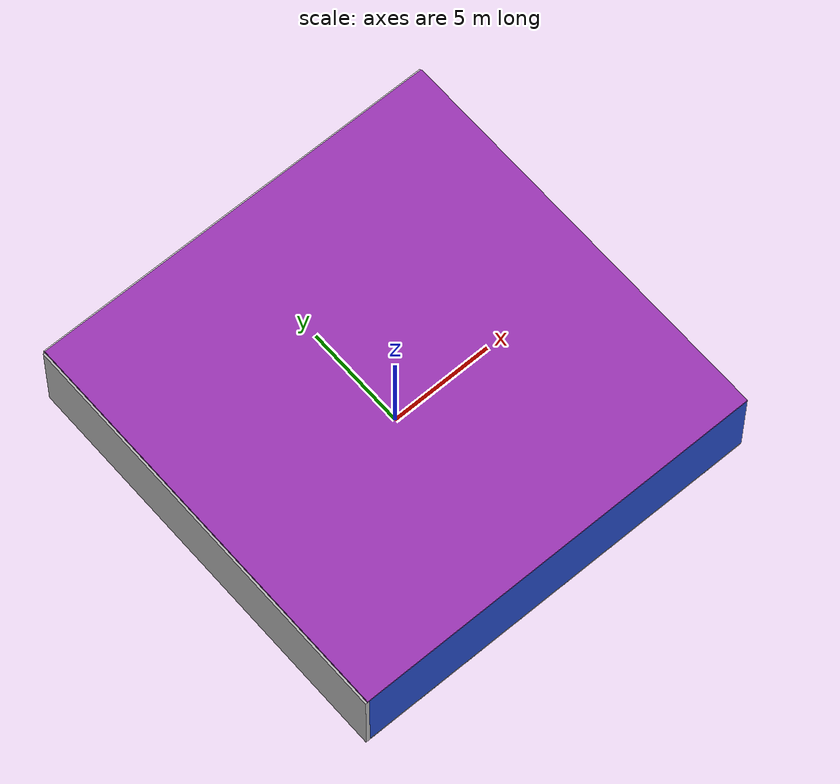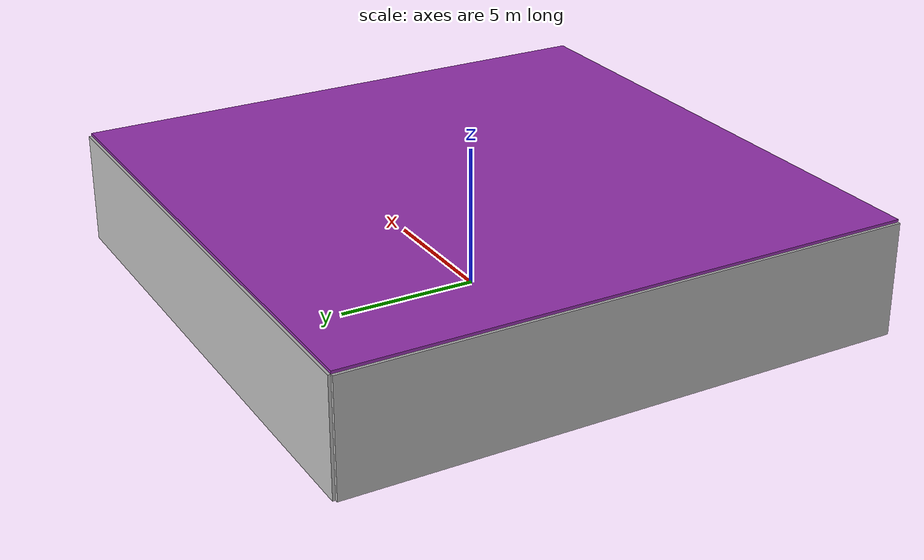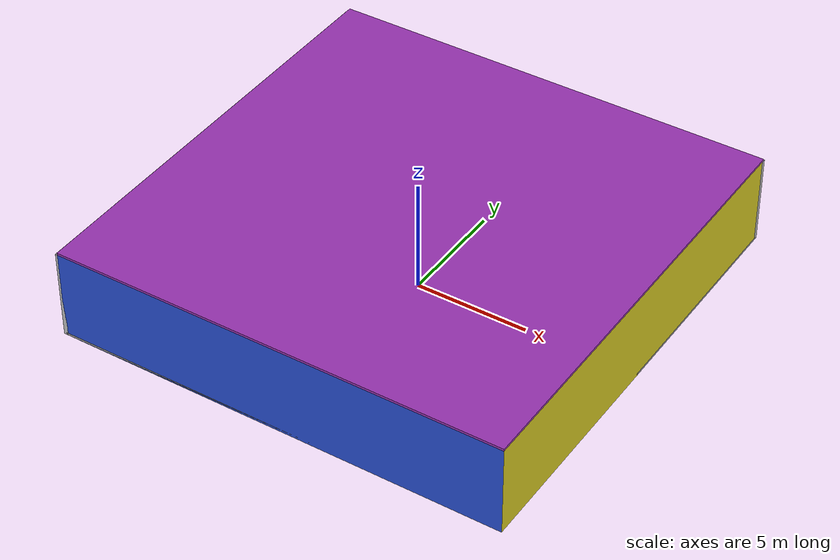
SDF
<sdf version="1.4">
 <world name="default">
  <physics type="ode">
   <max_step_size>0.001</max_step_size>
   <real_time_factor>1</real_time_factor>
   <real_time_update_rate>1000</real_time_update_rate>
   <gravity>0 0 -9.8</gravity>
  </physics>
  <scene><ambient>0.4 0.4 0.4 1</ambient><background>0.7 0.7 0.7 1</background><shadows>1</shadows></scene>
  <model name="Surrounding">
   <static>1</static>
   <link name="Ceiling">
    <collision name="Ceiling_Collision"><geometry><box><size>20 20 0.1</size></box></geometry></collision>
    <visual name="Ceiling_Visual">
     <geometry><box><size>20 20 0.1</size></box></geometry>
     <material>
      <script><uri>file://media/materials/scripts/gazebo.material</uri><name>Gazebo/Purple</name></script>
     </material>
    </visual>
    <pose>0 0 4.05 0 0 0</pose>
   </link>
   <link name="Wall_South">
    <collision name="Wall_South_Collision">
     <geometry><box><size>20 0 4</size></box></geometry>
     <pose>0 0 2 0 -0 0</pose>
    </collision>
    <visual name="Wall_South_Visual">
     <pose>0 0 2 0 -0 0</pose>
     <geometry><box><size>20 0 4</size></box></geometry>
     <material>
      <script><uri>file://media/materials/scripts/gazebo.material</uri><name>Gazebo/BlueGlow</name></script>
     </material>
    </visual>
    <velocity_decay><linear>0</linear><angular>0</angular></velocity_decay>
    <pose>0 -10 0 0 -0 0</pose>
   </link>
   <link name="Wall_East">
    <collision name="Wall_21_Collision">
     <geometry><box><size>20 0 4</size></box></geometry>
     <pose>0 0 2 0 -0 0</pose>
    </collision>
    <visual name="Wall_21_Visual">
     <pose>0 0 2 0 -0 0</pose>
     <geometry><box><size>20 0 4</size></box></geometry>
     <material>
      <script><uri>file://media/materials/scripts/gazebo.material</uri><name>Gazebo/Yellow</name></script>
     </material>
    </visual>
    <velocity_decay><linear>0</linear><angular>0</angular></velocity_decay>
    <pose>10 0 0 0 -0 1.5708</pose>
   </link>
   <link name="Wall_North">
    <collision name="Wall_22_Collision">
     <geometry><box><size>20 0.2 4</size></box></geometry>
     <pose>0 0 2 0 -0 0</pose>
    </collision>
    <visual name="Wall_22_Visual">
     <pose>0 0 2 0 -0 0</pose>
     <geometry><box><size>20 0.2 4</size></box></geometry>
     <material>
      <script><uri>file://media/materials/scripts/gazebo.material</uri><name>Gazebo/LightOff</name></script>
     </material>
    </visual>
    <velocity_decay><linear>0</linear><angular>0</angular></velocity_decay>
    <pose>0 10 0 0 -0 0</pose>
   </link>
   <link name="Wall_West">
    <collision name="Wall_23_Collision">
     <geometry><box><size>20 0.2 4</size></box></geometry>
     <pose>0 0 2 0 -0 0</pose>
    </collision>
    <visual name="Wall_23_Visual">
     <pose>0 0 2 0 -0 0</pose>
     <geometry><box><size>20 0.2 4</size></box></geometry>
     <material>
      <script><uri>file://media/materials/scripts/gazebo.material</uri><name>Gazebo/Pioneer2Body</name></script>
     </material>
    </visual>
    <velocity_decay><linear>0</linear><angular>0</angular></velocity_decay>
    <pose>-10 0 0 0 0 -1.5708</pose>
   </link>
   <link name="Ground_link">
    <collision name="collision">
     <pose>0 0 .05 0 -0 0</pose>
     <geometry><box><size>20 20 0.1</size></box></geometry>
    </collision>
    <visual name="visual">
     <pose>0 0 .05 0 -0 0</pose>
     <geometry><box><size>20 20 0.1</size></box></geometry>
     <material>
      <script><uri>file://media/materials/scripts/gazebo.material</uri><name>Gazebo/Grey</name></script>
     </material>
    </visual>
   </link>
   <static>1</static>
  </model>
  <spherical_coordinates>
   <surface_model>EARTH_WGS84</surface_model>
   <latitude_deg>0</latitude_deg>
   <longitude_deg>0</longitude_deg>
   <elevation>0</elevation>
   <heading_deg>0</heading_deg>
  </spherical_coordinates>
  <light name="lightball_0" type="diffuse">
   <diffuse>0.8 0.8 0.8 1</diffuse>
   <specular>0.2 0.2 0.2 1</specular>
   <attenuation>
    <range>100</range>
    <constant>0.7</constant>
    <linear>0.01</linear>
    <quadratic>0.001</quadratic>
   </attenuation>
   <direction>-0.5 0.1 -0.9</direction>
   <pose>3.75736380709 -3.37945606344 2.95525333952 0 0 0</pose>
  </light>
  <light name="lightball_1" type="diffuse">
   <diffuse>0.8 0.8 0.8 1</diffuse>
   <specular>0.2 0.2 0.2 1</specular>
   <attenuation>
    <range>100</range>
    <constant>0.7</constant>
    <linear>0.01</linear>
    <quadratic>0.001</quadratic>
   </attenuation>
   <direction>-0.5 0.1 -0.9</direction>
   <pose>6.96225544274 6.1363901595 2.78512877125 0 0 0</pose>
  </light>
  <light name="lightball_2" type="diffuse">
   <diffuse>0.8 0.8 0.8 1</diffuse>
   <specular>0.2 0.2 0.2 1</specular>
   <attenuation>
    <range>100</range>
    <constant>0.7</constant>
    <linear>0.01</linear>
    <quadratic>0.001</quadratic>
   </attenuation>
   <direction>-0.5 0.1 -0.9</direction>
   <pose>5.29385294928 -3.85373342491 1.84405203419 0 0 0</pose>
  </light>
  <light name="lightball_3" type="diffuse">
   <diffuse>0.8 0.8 0.8 1</diffuse>
   <specular>0.2 0.2 0.2 1</specular>
   <attenuation>
    <range>100</range>
    <constant>0.7</constant>
    <linear>0.01</linear>
    <quadratic>0.001</quadratic>
   </attenuation>
   <direction>-0.5 0.1 -0.9</direction>
   <pose>-8.63803926786 -4.734006805 2.68022870067 0 0 0</pose>
  </light>
  <light name="lightball_4" type="diffuse">
   <diffuse>0.8 0.8 0.8 1</diffuse>
   <specular>0.2 0.2 0.2 1</specular>
   <attenuation>
    <range>100</range>
    <constant>0.7</constant>
    <linear>0.01</linear>
    <quadratic>0.001</quadratic>
   </attenuation>
   <direction>-0.5 0.1 -0.9</direction>
   <pose>-2.34348742761 8.43602262607 3.72365571499 0 0 0</pose>
  </light>
  <include><uri>model://table</uri><pose>-8.29230805221 -6.79066361517 0 0 0 1.74418158146</pose></include>
  <include>
   <uri>model://construction_cone</uri>
   <pose>-5.19142152881 -1.04631713783 0 0 0 2.39788874505</pose>
  </include>
  <include><uri>model://table</uri><pose>3.76859398971 1.66580960971 0 0 0 2.94775509308</pose></include>
  <include>
   <uri>model://robocup_3Dsim_goal</uri>
   <pose>4.77824110879 4.19236208373 0 0 0 2.84395894776</pose>
  </include>
  <include><uri>model://table</uri><pose>8.23705695582 1.0301658967 0 0 0 2.28180339055</pose></include>
  <include><uri>model://cabinet</uri><pose>7.84599424941 8.20833939875 0 0 0 0.50219627078</pose></include>
 </world>
</sdf>

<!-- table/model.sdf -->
<sdf version="1.5">
  <model name="table">
    <static>true</static>
    <link name="link">
      <collision name="surface">
        <pose>0 0 1.0 0 0 0</pose>
        <geometry>
          <box>
            <size>1.5 0.8 0.03</size>
          </box>
        </geometry>
        <surface>
          <friction>
            <ode>
              <mu>0.6</mu>
              <mu2>0.6</mu2>
            </ode>
          </friction>
        </surface>
      </collision>
      <visual name="visual1">
        <pose>0 0 1.0 0 0 0</pose>
        <geometry>
          <box>
            <size>1.5 0.8 0.03</size>
          </box>
        </geometry>
        <material>
          <script>
            <uri>model://media/materials/scripts/gazebo.material</uri>
            <name>Gazebo/Wood</name>
          </script>
        </material>
      </visual>
      <collision name="front_left_leg">
        <pose>0.68 0.38 0.5 0 0 0</pose>
        <geometry>
          <cylinder>
            <radius>0.02</radius>
            <length>1.0</length>
          </cylinder>
        </geometry>
      </collision>
      <visual name="front_left_leg">
        <pose>0.68 0.38 0.5 0 0 0</pose>
        <geometry>
          <cylinder>
            <radius>0.02</radius>
            <length>1.0</length>
          </cylinder>
        </geometry>
        <material>
          <script>
            <uri>model://media/materials/scripts/gazebo.material</uri>
            <name>Gazebo/Grey</name>
          </script>
        </material>
      </visual>
      <collision name="front_right_leg">
        <pose>0.68 -0.38 0.5 0 0 0</pose>
        <geometry>
          <cylinder>
            <radius>0.02</radius>
            <length>1.0</length>
          </cylinder>
        </geometry>
      </collision>
      <visual name="front_right_leg">
        <pose>0.68 -0.38 0.5 0 0 0</pose>
        <geometry>
          <cylinder>
            <radius>0.02</radius>
            <length>1.0</length>
          </cylinder>
        </geometry>
        <material>
          <script>
            <uri>model://media/materials/scripts/gazebo.material</uri>
            <name>Gazebo/Grey</name>
          </script>
        </material>
      </visual>
      <collision name="back_right_leg">
        <pose>-0.68 -0.38 0.5 0 0 0</pose>
        <geometry>
          <cylinder>
            <radius>0.02</radius>
            <length>1.0</length>
          </cylinder>
        </geometry>
      </collision>
      <visual name="back_right_leg">
        <pose>-0.68 -0.38 0.5 0 0 0</pose>
        <geometry>
          <cylinder>
            <radius>0.02</radius>
            <length>1.0</length>
          </cylinder>
        </geometry>
        <material>
          <script>
            <uri>model://media/materials/scripts/gazebo.material</uri>
            <name>Gazebo/Grey</name>
          </script>
        </material>
      </visual>
      <collision name="back_left_leg">
        <pose>-0.68 0.38 0.5 0 0 0</pose>
        <geometry>
          <cylinder>
            <radius>0.02</radius>
            <length>1.0</length>
          </cylinder>
        </geometry>
      </collision>
      <visual name="back_left_leg">
        <pose>-0.68 0.38 0.5 0 0 0</pose>
        <geometry>
          <cylinder>
            <radius>0.02</radius>
            <length>1.0</length>
          </cylinder>
        </geometry>
        <material>
          <script>
            <uri>model://media/materials/scripts/gazebo.material</uri>
            <name>Gazebo/Grey</name>
          </script>
        </material>
      </visual>
    </link>
  </model>
</sdf>

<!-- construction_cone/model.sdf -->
<sdf version="1.5">
  <model name="Construction Cone">
    <link name="link">
      <collision name="collision">
        <geometry>
          <mesh>
            <scale>10 10 10</scale>
            <uri>file://isr-testbed/construction_cone/meshes/construction_cone.dae</uri>
          </mesh>
        </geometry>
      </collision>
      <visual name="visual">
        <geometry>
          <mesh>
            <scale>10 10 10</scale>
            <uri>file://isr-testbed/construction_cone/meshes/construction_cone.dae</uri>
          </mesh>
        </geometry>
      </visual>
    </link>
  </model>
</sdf>

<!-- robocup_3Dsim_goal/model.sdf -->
<sdf version="1.5">
  <model name="robocup_3d_goal">
    <static>true</static>
    <link name="left_post">
      <pose>0 1.05 0.45 0 0 0</pose>
      <collision name="collision">
        <geometry>
          <cylinder>
            <radius>0.05</radius>
            <length>0.9</length>
          </cylinder>
        </geometry>
      </collision>
      <visual name="visual">
        <geometry>
          <cylinder>
            <radius>0.05</radius>
            <length>0.9</length>
          </cylinder>
        </geometry>
        <material>
          <script>
            <uri>file://media/materials/scripts/gazebo.material</uri>
            <name>Gazebo/ZincYellow</name>
          </script>
        </material>
      </visual>
    </link>
    <link name="left_support_horiz_lower">
      <pose>0.30 1.05 0.01 0 0 0</pose>
      <collision name="collision">
        <geometry>
          <box>
            <size>0.50 0.02 0.02</size>
          </box>
        </geometry>
      </collision>
      <visual name="visual">
        <geometry>
          <box>
            <size>0.50 0.02 0.02</size>
          </box>
        </geometry>
        <material>
          <script>
            <uri>file://media/materials/scripts/gazebo.material</uri>
            <name>Gazebo/White</name>
          </script>
        </material>
      </visual>
    </link>
    <link name="left_support_horiz_upper">
      <pose>0.30 1.05 0.79 0 0 0</pose>
      <collision name="collision">
        <geometry>
          <box>
            <size>0.50 0.02 0.02</size>
          </box>
        </geometry>
      </collision>
      <visual name="visual">
        <geometry>
          <box>
            <size>0.50 0.02 0.02</size>
          </box>
        </geometry>
        <material>
          <script>
            <uri>file://media/materials/scripts/gazebo.material</uri>
            <name>Gazebo/White</name>
          </script>
        </material>
      </visual>
    </link>
    <link name="left_support_vertical">
      <pose>0.56 1.05 0.4 0 1.5708 0</pose>
      <collision name="collision">
        <geometry>
          <box>
            <size>0.80 0.02 0.02</size>
          </box>
        </geometry>
      </collision>
      <visual name="visual">
        <geometry>
          <box>
            <size>0.80 0.02 0.02</size>
          </box>
        </geometry>
        <material>
          <script>
            <uri>file://media/materials/scripts/gazebo.material</uri>
            <name>Gazebo/White</name>
          </script>
        </material>
      </visual>
    </link>
    <link name="right_support_horiz_lower">
      <pose>0.30 -1.05 0.01 0 0 0</pose>
      <collision name="collision">
        <geometry>
          <box>
            <size>0.50 0.02 0.02</size>
          </box>
        </geometry>
      </collision>
      <visual name="visual">
        <geometry>
          <box>
            <size>0.50 0.02 0.02</size>
          </box>
        </geometry>
        <material>
          <script>
            <uri>file://media/materials/scripts/gazebo.material</uri>
            <name>Gazebo/White</name>
          </script>
        </material>
      </visual>
    </link>
    <link name="right_support_horiz_upper">
      <pose>0.30 -1.05 0.79 0 0 0</pose>
      <collision name="collision">
        <geometry>
          <box>
            <size>0.50 0.02 0.02</size>
          </box>
        </geometry>
      </collision>
      <visual name="visual">
        <geometry>
          <box>
            <size>0.50 0.02 0.02</size>
          </box>
        </geometry>
        <material>
          <script>
            <uri>file://media/materials/scripts/gazebo.material</uri>
            <name>Gazebo/White</name>
          </script>
        </material>
      </visual>
    </link>
    <link name="right_support_vertical">
      <pose>0.56 -1.05 0.4 0 1.5708 0</pose>
      <collision name="collision">
        <geometry>
          <box>
            <size>0.80 0.02 0.02</size>
          </box>
        </geometry>
      </collision>
      <visual name="visual">
        <geometry>
          <box>
            <size>0.80 0.02 0.02</size>
          </box>
        </geometry>
        <material>
          <script>
            <uri>file://media/materials/scripts/gazebo.material</uri>
            <name>Gazebo/White</name>
          </script>
        </material>
      </visual>
    </link>
    <link name="center_support_horiz_lower">
      <pose>0.56 0 0.01 0 1.5708 0</pose>
      <collision name="collision">
        <geometry>
          <box>
            <size>0.02 2.08 0.02</size>
          </box>
        </geometry>
      </collision>
      <visual name="visual">
        <geometry>
          <box>
            <size>0.02 2.08 0.02</size>
          </box>
        </geometry>
        <material>
          <script>
            <uri>file://media/materials/scripts/gazebo.material</uri>
            <name>Gazebo/White</name>
          </script>
        </material>
      </visual>
    </link>
    <link name="center_support_horiz_upper">
      <pose>0.56 0 0.79 0 1.5708 0</pose>
      <collision name="collision">
        <geometry>
          <box>
            <size>0.02 2.08 0.02</size>
          </box>
        </geometry>
      </collision>
      <visual name="visual">
        <geometry>
          <box>
            <size>0.02 2.08 0.02</size>
          </box>
        </geometry>
        <material>
          <script>
            <uri>file://media/materials/scripts/gazebo.material</uri>
            <name>Gazebo/White</name>
          </script>
        </material>
      </visual>
    </link>
    <link name="right_post">
      <pose>0 -1.05 0.45 0 0 0</pose>
      <collision name="collision">
        <geometry>
          <cylinder>
            <radius>0.05</radius>
            <length>0.9</length>
          </cylinder>
        </geometry>
      </collision>
      <visual name="visual">
        <geometry>
          <cylinder>
            <radius>0.05</radius>
            <length>0.9</length>
          </cylinder>
        </geometry>
        <material>
          <script>
            <uri>file://media/materials/scripts/gazebo.material</uri>
            <name>Gazebo/ZincYellow</name>
          </script>
        </material>
      </visual>
    </link>
    <link name="crossbar">
      <pose>0 0 0.85 1.57 1.57 0</pose>
      <collision name="collision">
        <geometry>
          <cylinder>
            <radius>0.05</radius>
            <length>2.0</length>
          </cylinder>
        </geometry>
      </collision>
      <visual name="visual">
        <geometry>
          <cylinder>
            <radius>0.05</radius>
            <length>2.0</length>
          </cylinder>
        </geometry>
        <material>
          <script>
            <uri>file://media/materials/scripts/gazebo.material</uri>
            <name>Gazebo/ZincYellow</name>
          </script>
        </material>
      </visual>
    </link>
    <link name="center_net">
      <pose>0.56 0 0.40 0 0 0</pose>
      <collision name="collision">
        <geometry>
          <box>
            <size>0.01 2.1 0.80</size>
          </box>
        </geometry>
      </collision>
      <visual name="visual">
        <geometry>
          <box>
            <size>0.01 2.1 0.80</size>
          </box>
        </geometry>
        <material>
          <script>
            <uri>model://../model_source/models/robocup09_spl_field/materials/scripts/</uri>
            <uri>model://../model_source/models/robocup09_spl_field/materials/textures/</uri>
            <name>RoboCup/Net</name>
          </script>
        </material>
      </visual>
    </link>
    <link name="left_net">
      <pose>0.30 1.05 0.40 0 0 0</pose>
      <collision name="collision">
        <geometry>
          <box>
            <size>0.50 0.01 0.76</size>
          </box>
        </geometry>
      </collision>
      <visual name="visual">
        <geometry>
          <box>
            <size>0.50 0.01 0.76</size>
          </box>
        </geometry>
        <material>
          <script>
            <uri>model://../model_source/models/robocup09_spl_field/materials/scripts/</uri>
            <uri>model://../model_source/models/robocup09_spl_field/materials/textures/</uri>
            <name>RoboCup/Net</name>
          </script>
        </material>
      </visual>
    </link>
    <link name="right_net">
      <pose>0.30 -1.05 0.40 0 0 0</pose>
      <collision name="collision">
        <geometry>
          <box>
            <size>0.50 0.01 0.76</size>
          </box>
        </geometry>
      </collision>
      <visual name="visual">
        <geometry>
          <box>
            <size>0.50 0.01 0.76</size>
          </box>
        </geometry>
        <material>
          <script>
            <uri>model://../model_source/models/robocup09_spl_field/materials/scripts/</uri>
            <uri>model://../model_source/models/robocup09_spl_field/materials/textures/</uri>
            <name>RoboCup/Net</name>
          </script>
        </material>
      </visual>
    </link>
  </model>
</sdf>

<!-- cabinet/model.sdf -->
<sdf version="1.5">
  <model name="cabinet">
    <static>true</static>
    <link name="cabinet_bottom_plate">
      <inertial>
        <pose>0 0 -1 0 0 0</pose>
        <inertia>
          <ixx>2.050000</ixx>
          <ixy>0</ixy>
          <ixz>0</ixz>
          <iyy>2.050000</iyy>
          <iyz>0</iyz>
          <izz>2.050000</izz>
        </inertia>
        <mass>25.000000</mass>
      </inertial>
      <collision name="cabinet_bottom_plate_geom">
        <pose>0 0 0.010000 0 0 0</pose>
        <geometry>
          <box>
            <size>0.450000 0.450000 0.020000</size>
          </box>
        </geometry>
      </collision>
      <visual name="cabinet_bottom_plate_geom_visual">
        <pose>0 0 0.010000 0 0 0</pose>
        <geometry>
          <box>
            <size>0.450000 0.450000 0.020000</size>
          </box>
        </geometry>
        <material>
          <script>
            <uri>model://media/materials/scripts/gazebo.material</uri>
            <name>Gazebo/Wood</name>
          </script>
        </material>
      </visual>
      <collision name="cabinet_bottom_plate_geom_cabinet_back_plate">
        <pose>0.235000 0 0.510000 0 0 0</pose>
        <geometry>
          <box>
            <size>0.020000 0.450000 1.020000</size>
          </box>
        </geometry>
      </collision>
      <visual name="cabinet_bottom_plate_geom_cabinet_back_plate_visual">
        <pose>0.235000 0 0.510000 0 0 0</pose>
        <geometry>
          <box>
            <size>0.020000 0.450000 1.020000</size>
          </box>
        </geometry>
        <material>
          <script>
            <uri>model://media/materials/scripts/gazebo.material</uri>
            <name>Gazebo/Wood</name>
          </script>
        </material>
      </visual>
      <collision name="cabinet_bottom_plate_geom_cabinet_left_plate">
        <pose>0 0.235000 0.510000 0 0 0</pose>
        <geometry>
          <box>
            <size>0.450000 0.020000 1.020000</size>
          </box>
        </geometry>
      </collision>
      <visual name="cabinet_bottom_plate_geom_cabinet_left_plate_visual">
        <pose>0 0.235000 0.510000 0 0 0</pose>
        <geometry>
          <box>
            <size>0.450000 0.020000 1.020000</size>
          </box>
        </geometry>
        <material>
          <script>
            <uri>model://media/materials/scripts/gazebo.material</uri>
            <name>Gazebo/Wood</name>
          </script>
        </material>
      </visual>
      <collision name="cabinet_bottom_plate_geom_cabinet_middle_plate">
        <pose>0 0 0.510000 0 0 0</pose>
        <geometry>
          <box>
            <size>0.450000 0.450000 0.020000</size>
          </box>
        </geometry>
      </collision>
      <visual name="cabinet_bottom_plate_geom_cabinet_middle_plate_visual">
        <pose>0 0 0.510000 0 0 0</pose>
        <geometry>
          <box>
            <size>0.450000 0.450000 0.020000</size>
          </box>
        </geometry>
        <material>
          <script>
            <uri>model://media/materials/scripts/gazebo.material</uri>
            <name>Gazebo/Wood</name>
          </script>
        </material>
      </visual>
      <collision name="cabinet_bottom_plate_geom_cabinet_right_plate">
        <pose>0 -0.235000 0.510000 0 0 0</pose>
        <geometry>
          <box>
            <size>0.450000 0.020000 1.020000</size>
          </box>
        </geometry>
      </collision>
      <visual name="cabinet_bottom_plate_geom_cabinet_right_plate_visual">
        <pose>0 -0.235000 0.510000 0 0 0</pose>
        <geometry>
          <box>
            <size>0.450000 0.020000 1.020000</size>
          </box>
        </geometry>
        <material>
          <script>
            <uri>model://media/materials/scripts/gazebo.material</uri>
            <name>Gazebo/Wood</name>
          </script>
        </material>
      </visual>
      <collision name="cabinet_bottom_plate_geom_cabinet_top_plate">
        <pose>0 0 1.010000 0 0 0</pose>
        <geometry>
          <box>
            <size>0.450000 0.450000 0.020000</size>
          </box>
        </geometry>
      </collision>
      <visual name="cabinet_bottom_plate_geom_cabinet_top_plate_visual">
        <pose>0 0 1.010000 0 0 0</pose>
        <geometry>
          <box>
            <size>0.450000 0.450000 0.020000</size>
          </box>
        </geometry>
        <material>
          <script>
            <uri>model://media/materials/scripts/gazebo.material</uri>
            <name>Gazebo/Wood</name>
          </script>
        </material>
      </visual>
    </link>
  </model>
</sdf>
